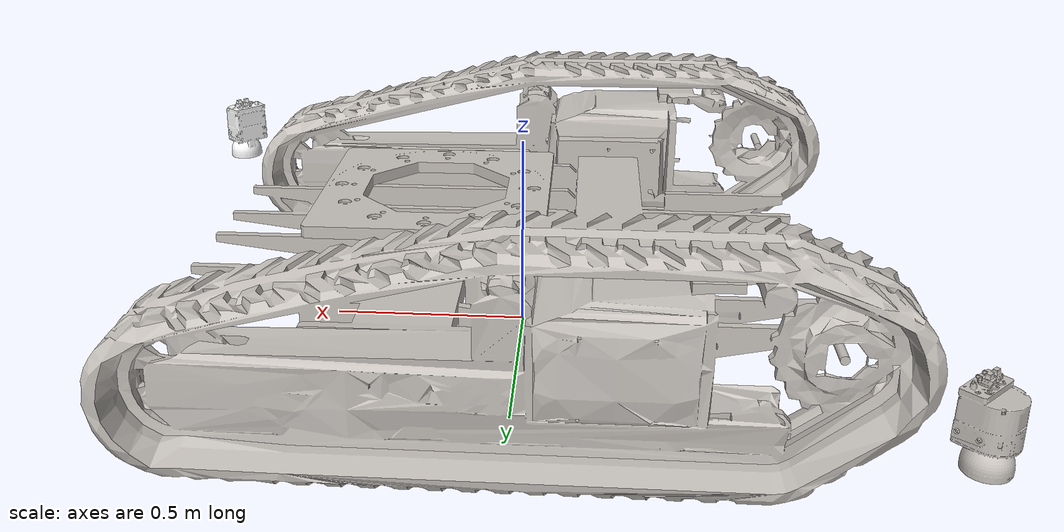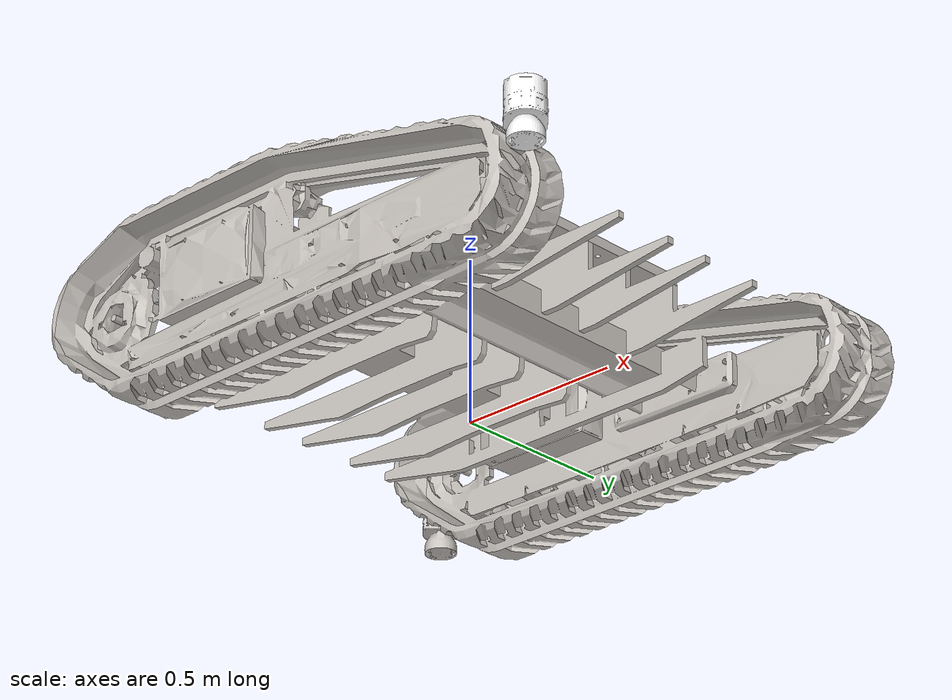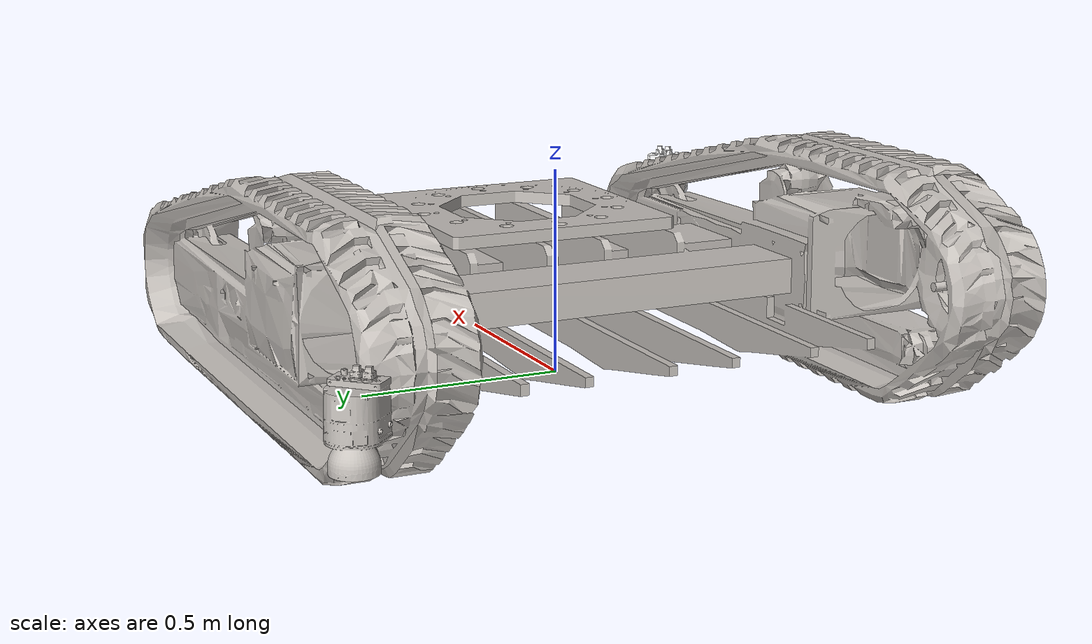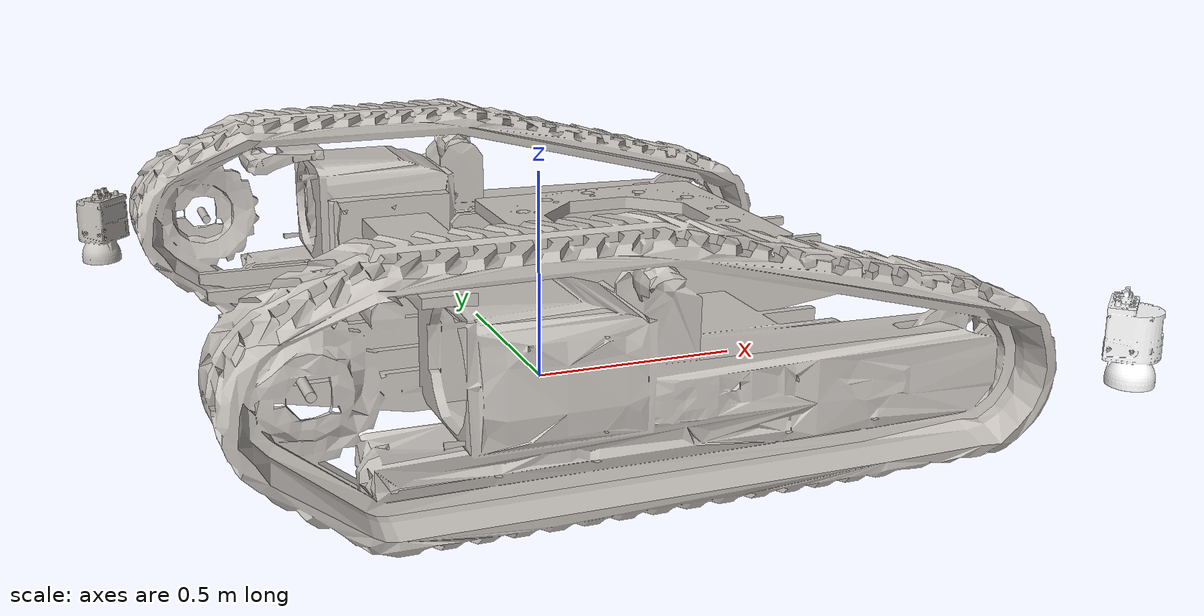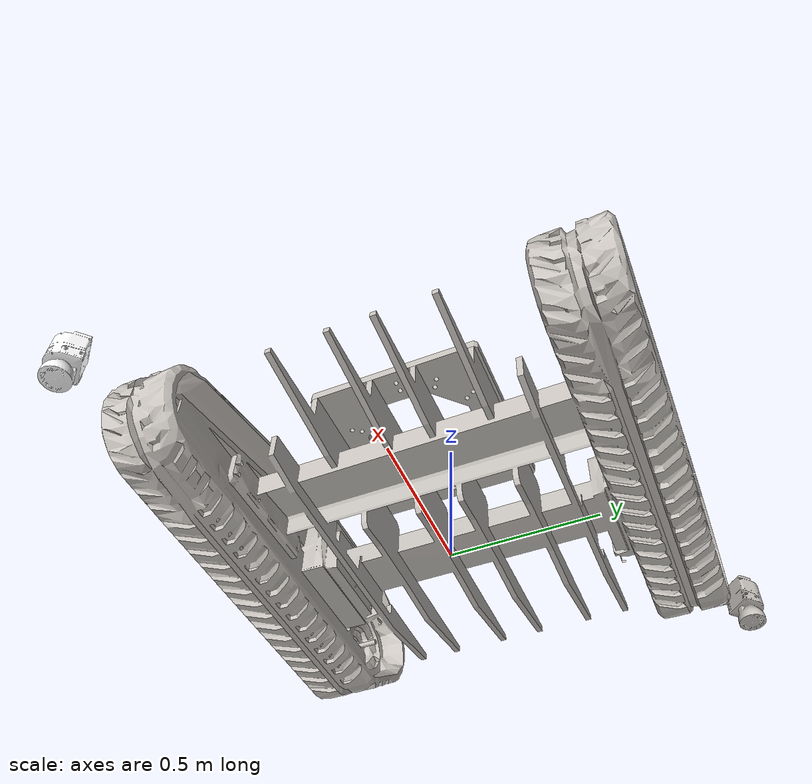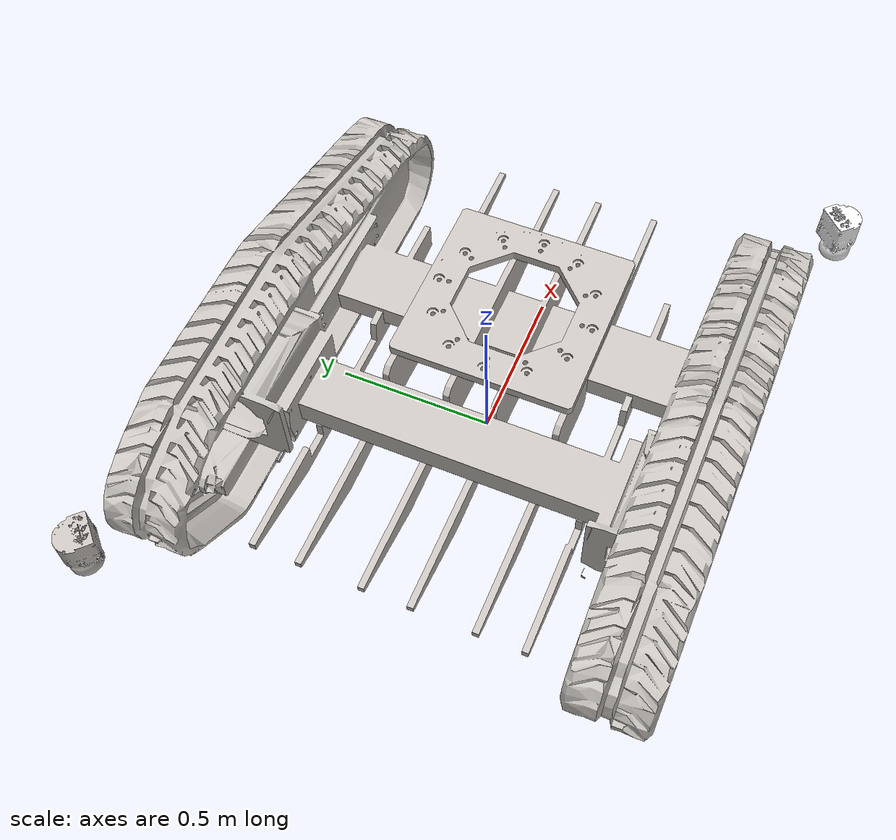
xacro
<?xml version="1.0"?>
<robot xmlns:xacro="http://wiki.ros.org/xacro" name="tracked_constructa">

    <xacro:arg name="prefix" default="tracked" />
    <xacro:include filename="$(find tracked_constructa)/xacro/tracked_constructa.xacro" />
    <xacro:include filename="$(find tracked_constructa)/xacro/tracked_constructa.ros2_control.xacro" />

    <xacro:tracked_constructa prefix="$(arg prefix)">
        <origin xyz="0 0 0" rpy="0 0 0" />
    </xacro:tracked_constructa>
    <xacro:tracked_constructa_ros2_control
        name="DiffBot" prefix="$(arg prefix)" use_mock_hardware="false"/>

</robot>

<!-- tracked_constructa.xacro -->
<robot xmlns:xacro="http://wiki.ros.org/xacro">

    <xacro:macro name="tracked_constructa"
        params="
        prefix:='tracked'
        connected_to:=''
        *origin"
    >

        <!-- virtual joint -->
        <xacro:unless value="${not connected_to}">
            <joint name="world" type="fixed">
                <parent link="${connected_to}" />
                <child link="${prefix}_base_link" />
                <xacro:insert_block name="origin" />
            </joint>
        </xacro:unless>

        <link
            name="${prefix}_base_link">
            <inertial>
                <origin
                    xyz="-0.0032553 0.00058223 0.2389"
                    rpy="0 0 0" />
                <mass
                    value="827.12" />
                <inertia
                    ixx="30.917"
                    ixy="-0.023393"
                    ixz="9.441"
                    iyy="208.62"
                    iyz="-0.0088913"
                    izz="192.94" />
            </inertial>
            <visual>
                <origin
                    xyz="0 0 0"
                    rpy="0 0 0" />
                <geometry>
                    <mesh
                        filename="package://tracked_constructa/meshes/base_link.STL" />
                </geometry>
                <material
                    name="">
                    <color
                        rgba="0.77647 0.75686 0.73725 1" />
                </material>
            </visual>
            <collision>
                <origin
                    xyz="0 0 0"
                    rpy="0 0 0" />
                <geometry>
                    <mesh
                        filename="package://tracked_constructa/meshes/base_link.STL" />
                </geometry>
            </collision>
        </link>
        <link
            name="${prefix}_wheel_right">
            <inertial>
                <origin
                    xyz="2.4228E-05 -5.2484E-06 -0.05"
                    rpy="0 0 0" />
                <mass
                    value="0.2419" />
                <inertia
                    ixx="0.00020763"
                    ixy="3.052E-23"
                    ixz="1.4093E-18"
                    iyy="0.00020763"
                    iyz="-1.2101E-18"
                    izz="1.2095E-05" />
            </inertial>
            <visual>
                <origin
                    xyz="0 0 0"
                    rpy="0 0 0" />
                <geometry>
                    <mesh
                        filename="package://tracked_constructa/meshes/wheel_right.STL" />
                </geometry>
                <material
                    name="">
                    <color
                        rgba="0.77647 0.75686 0.73725 1" />
                </material>
            </visual>
            <collision>
                <origin
                    xyz="0 0 0"
                    rpy="0 0 0" />
                <geometry>
                    <mesh
                        filename="package://tracked_constructa/meshes/wheel_right.STL" />
                </geometry>
            </collision>
        </link>
        <joint
            name="${prefix}_right_wheel_joint"
            type="revolute">
            <origin
                xyz="-0.68249 -0.71198 0.29748"
                rpy="1.5708 0 0" />
            <parent
                link="${prefix}_base_link" />
            <child
                link="${prefix}_wheel_right" />
            <axis
                xyz="0 0 1" />
            <limit
                lower="-1E-16"
                upper="1E+16"
                effort="0"
                velocity="0" />
        </joint>
        <link
            name="${prefix}_wheel_left">
            <inertial>
                <origin
                    xyz="2.4199E-05 1.2367E-05 0.05"
                    rpy="0 0 0" />
                <mass
                    value="0.2419" />
                <inertia
                    ixx="0.00020763"
                    ixy="2.6987E-53"
                    ixz="-5.1095E-36"
                    iyy="0.00020763"
                    iyz="-2.3373E-37"
                    izz="1.2095E-05" />
            </inertial>
            <visual>
                <origin
                    xyz="0 0 0"
                    rpy="0 0 0" />
                <geometry>
                    <mesh
                        filename="package://tracked_constructa/meshes/wheel_left.STL" />
                </geometry>
                <material
                    name="">
                    <color
                        rgba="0.77647 0.75686 0.73725 1" />
                </material>
            </visual>
            <collision>
                <origin
                    xyz="0 0 0"
                    rpy="0 0 0" />
                <geometry>
                    <mesh
                        filename="package://tracked_constructa/meshes/wheel_left.STL" />
                </geometry>
            </collision>
        </link>
        <joint
            name="${prefix}_left_wheel_joint"
            type="revolute">
            <origin
                xyz="-0.68249 0.71198 0.29746"
                rpy="1.5708 0 0" />
            <parent
                link="${prefix}_base_link" />
            <child
                link="${prefix}_wheel_left" />
            <axis
                xyz="0 0 -1" />
            <limit
                lower="-1E-16"
                upper="1E+16"
                effort="0"
                velocity="0" />
        </joint>
        <link
            name="${prefix}_robot_base_link">
            <inertial>
                <origin
                    xyz="5.5511E-17 1.2072E-16 -0.01498"
                    rpy="0 0 0" />
                <mass
                    value="50.758" />
                <inertia
                    ixx="1.9089"
                    ixy="1.6591E-16"
                    ixz="-1.2712E-19"
                    iyy="1.9089"
                    iyz="-6.6393E-15"
                    izz="3.8104" />
            </inertial>
            <visual>
                <origin
                    xyz="0 0 0"
                    rpy="0 0 0" />
                <geometry>
                    <mesh
                        filename="package://tracked_constructa/meshes/robot_base_link.STL" />
                </geometry>
                <material
                    name="">
                    <color
                        rgba="0.77647 0.75686 0.73725 1" />
                </material>
            </visual>
            <collision>
                <origin
                    xyz="0 0 0"
                    rpy="0 0 0" />
                <geometry>
                    <mesh
                        filename="package://tracked_constructa/meshes/robot_base_link.STL" />
                </geometry>
            </collision>
        </link>
        <joint
            name="${prefix}_robot_base_link"
            type="fixed">
            <origin
                xyz="0.2215 0 0.37377"
                rpy="0 0 0" />
            <parent
                link="${prefix}_base_link" />
            <child
                link="${prefix}_robot_base_link" />
            <axis
                xyz="0 0 0" />
        </joint>
        <link
            name="${prefix}_lidar_1">
            <inertial>
                <origin
                    xyz="0.79861 2.8555E-08 -0.014039"
                    rpy="0 0 0" />
                <mass
                    value="5816.8" />
                <inertia
                    ixx="28155"
                    ixy="-9.4051E-06"
                    ixz="254.35"
                    iyy="14577"
                    iyz="7.565E-06"
                    izz="42723" />
            </inertial>
            <visual>
                <origin
                    xyz="0 0 0"
                    rpy="0 0 0" />
                <geometry>
                    <mesh
                        filename="package://tracked_constructa/meshes/lidar_1.STL" />
                </geometry>
                <material
                    name="">
                    <color
                        rgba="0.77647 0.75686 0.73725 1" />
                </material>
            </visual>
            <collision>
                <origin
                    xyz="0 0 0"
                    rpy="0 0 0" />
                <geometry>
                    <mesh
                        filename="package://tracked_constructa/meshes/lidar_1.STL" />
                </geometry>
            </collision>
        </link>
        <joint
            name="${prefix}_lidar_1"
            type="fixed">
            <origin
                xyz="-0.9335 0.84997 0.19"
                rpy="-3.1416 0.017453 2.3562" />
            <parent
                link="${prefix}_base_link" />
            <child
                link="${prefix}_lidar_1" />
            <axis
                xyz="0 0 0" />
        </joint>
        <link
            name="${prefix}_lidar_2">
            <inertial>
                <origin
                    xyz="0 0 0"
                    rpy="0 0 0" />
                <mass
                    value="0" />
                <inertia
                    ixx="0"
                    ixy="0"
                    ixz="0"
                    iyy="0"
                    iyz="0"
                    izz="0" />
            </inertial>
            <visual>
                <origin
                    xyz="0 0 0"
                    rpy="0 0 0" />
                <geometry>
                    <mesh
                        filename="package://tracked_constructa/meshes/lidar_2.STL" />
                </geometry>
                <material
                    name="">
                    <color
                        rgba="1 1 1 1" />
                </material>
            </visual>
            <collision>
                <origin
                    xyz="0 0 0"
                    rpy="0 0 0" />
                <geometry>
                    <mesh
                        filename="package://tracked_constructa/meshes/lidar_2.STL" />
                </geometry>
            </collision>
        </link>
        <joint
            name="${prefix}_lidar_2"
            type="fixed">
            <origin
                xyz="0.991504423857657 -0.849972187217018 0.189999999999997"
                rpy="-3.14159265349393 0.017453292492991 -0.785398163455891" />
            <parent
                link="${prefix}_base_link" />
            <child
                link="${prefix}_lidar_2" />
            <axis
                xyz="0 0 0" />
        </joint>

    </xacro:macro>

</robot>
